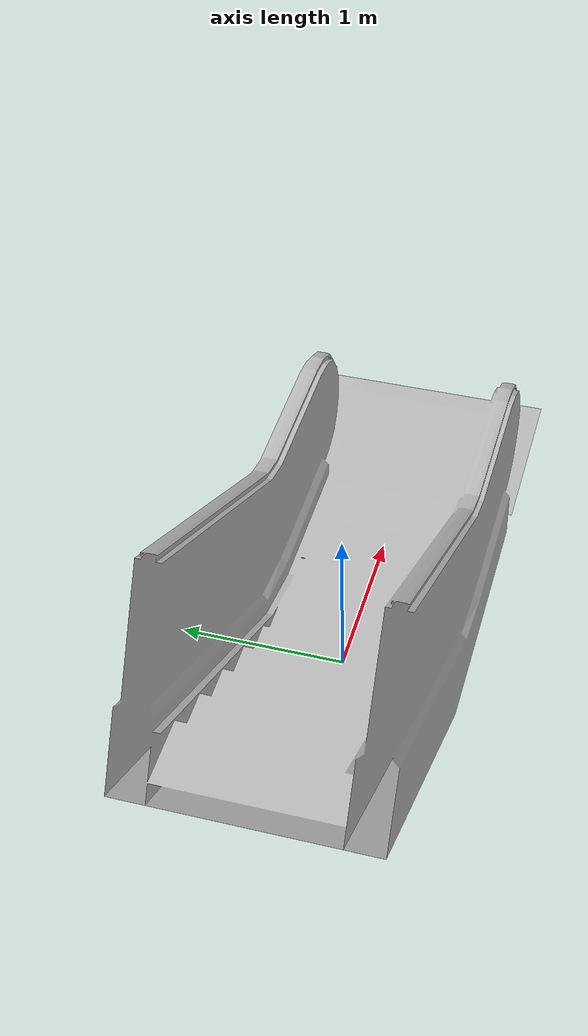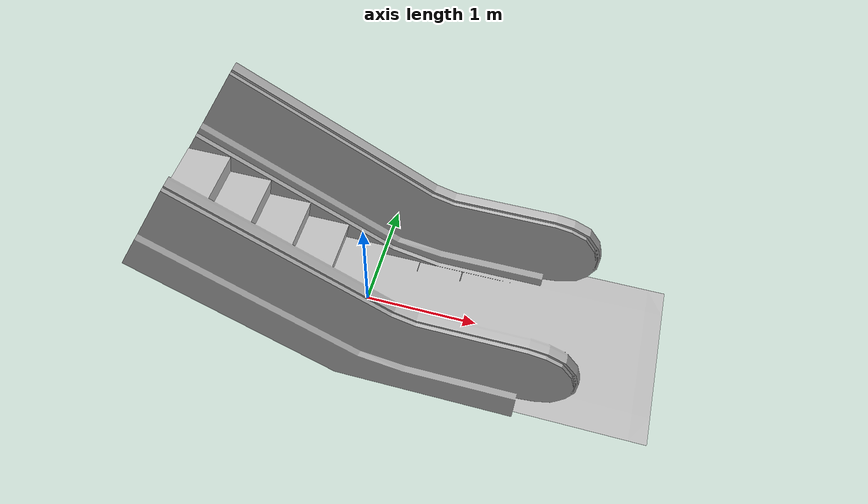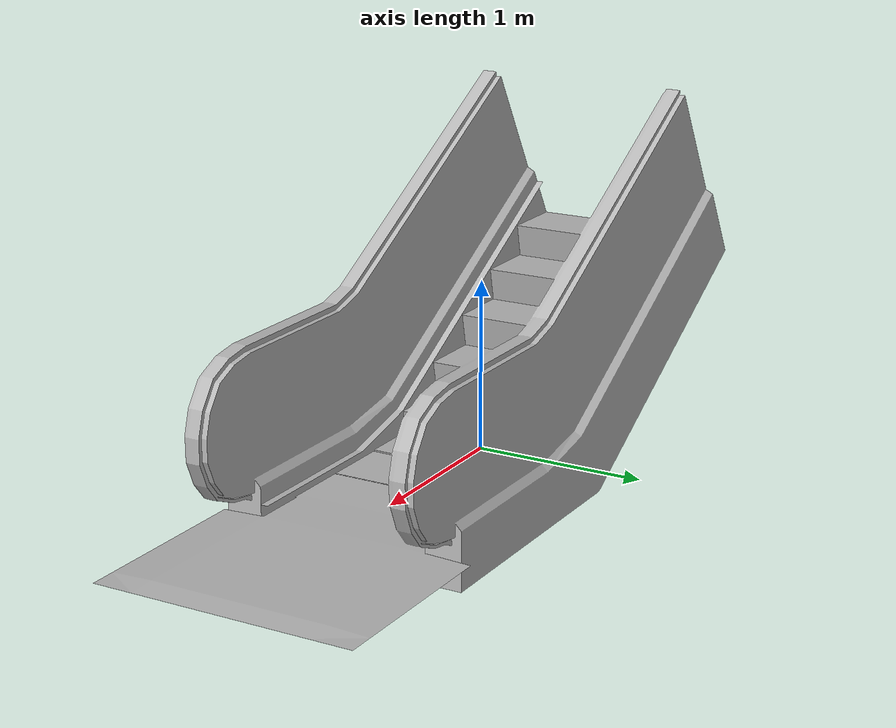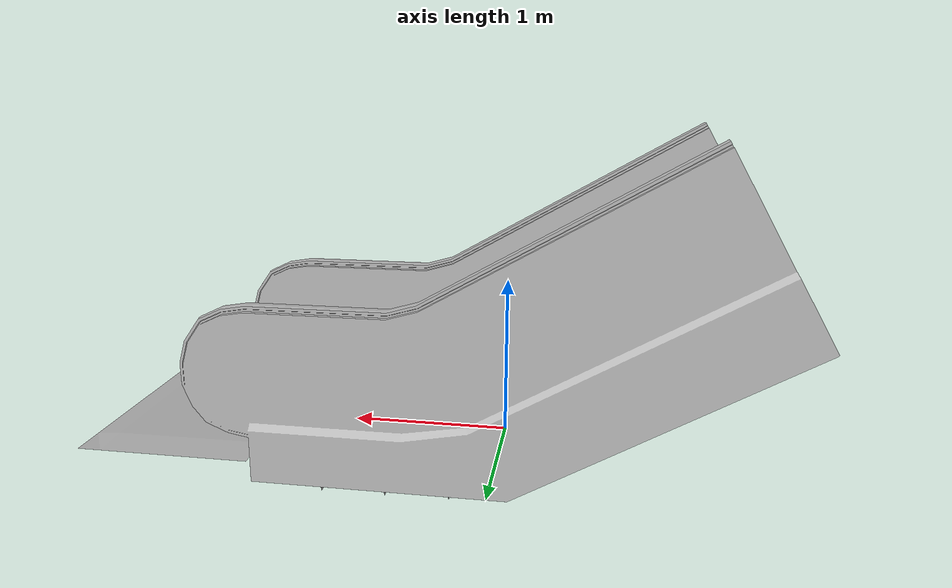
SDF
<?xml version='1.0' encoding='utf-8'?>
<sdf version="1.6">
  <model name="EscalatorStart">
   <static>true</static>
    <link name="body">
      <pose>0 0 0 0 0 0</pose>

      <visual name="visual">
        <geometry>
          <mesh>
            <uri>model://EscalatorStart/meshes/EscalatorStart.obj</uri>
          </mesh>
        </geometry>
      </visual>

      <collision name="collision">
        <geometry>
          <mesh>
            <uri>model://EscalatorStart/meshes/EscalatorStart_Col.obj</uri>
          </mesh>
        </geometry>
      </collision>

    </link>
  </model>
</sdf>
